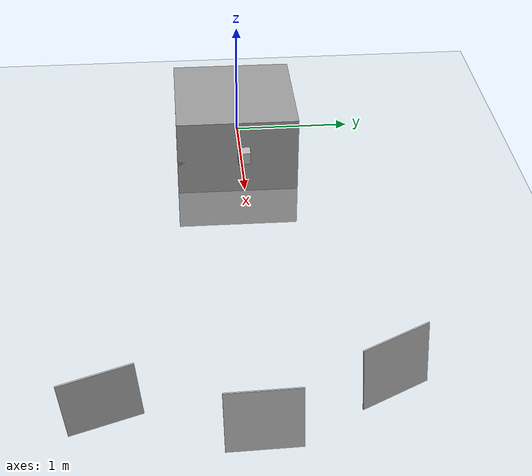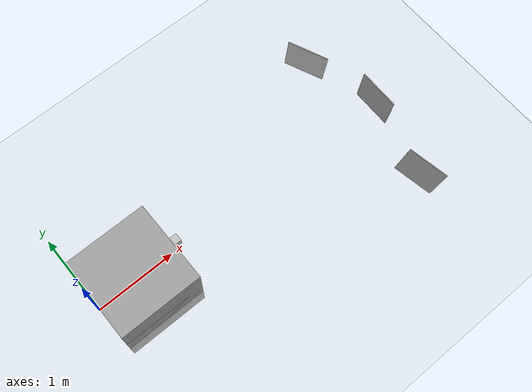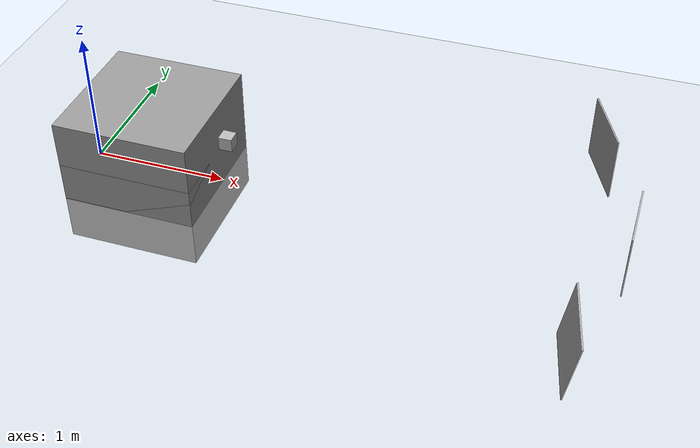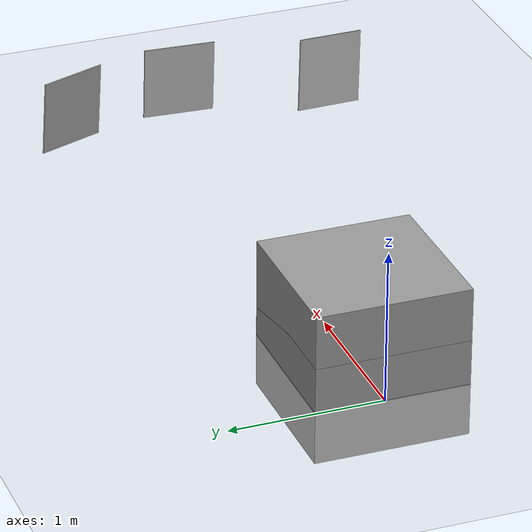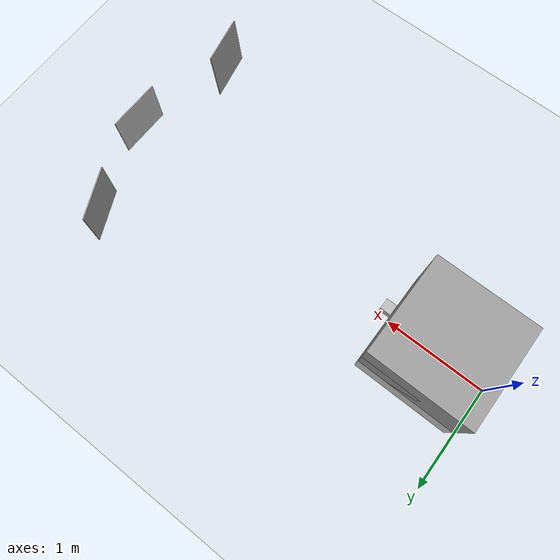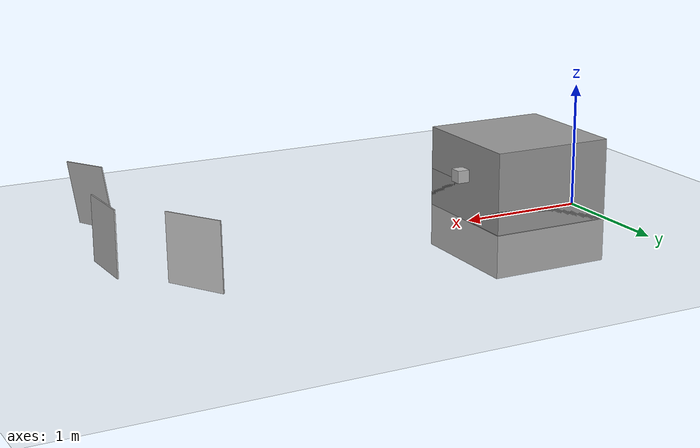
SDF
<sdf version="1.6">
 <world name="default">
  <model name="ground_plane">
   <static>1</static>
   <link name="link">
    <collision name="collision">
     <geometry><plane><normal>0 0 1</normal><size>100 100</size></plane></geometry>
     <surface><friction><ode><mu>100</mu><mu2>50</mu2></ode></friction></surface>
    </collision>
    <visual name="visual">
     <cast_shadows>0</cast_shadows>
     <geometry><plane><normal>0 0 1</normal><size>100 100</size></plane></geometry>
     <material>
      <script><uri>file://media/materials/scripts/gazebo.material</uri><name>Gazebo/Grey</name></script>
     </material>
    </visual>
   </link>
  </model>
  <light name="sun" type="directional">
   <pose>0 0 10 0 -0 0</pose>
   <diffuse>0.8 0.8 0.8 1</diffuse>
   <specular>0.1 0.1 0.1 1</specular>
   <attenuation>
    <range>1000</range>
    <constant>0.9</constant>
    <linear>0.01</linear>
    <quadratic>0.001</quadratic>
   </attenuation>
   <direction>-0.5 0.5 -1</direction>
  </light>
  <gravity>0 0 -9.8</gravity>
  <magnetic_field>6e-06 2.3e-05 -4.2e-05</magnetic_field>
  <atmosphere type="adiabatic"/>
  <physics name="default_physics" default="0" type="ode">
   <max_step_size>0.001</max_step_size>
   <real_time_factor>1</real_time_factor>
   <real_time_update_rate>1000</real_time_update_rate>
  </physics>
  <scene><ambient>0.4 0.4 0.4 1</ambient><background>0.7 0.7 0.7 1</background><shadows>1</shadows></scene>
  <spherical_coordinates>
   <surface_model>EARTH_WGS84</surface_model>
   <latitude_deg>0</latitude_deg>
   <longitude_deg>0</longitude_deg>
   <elevation>0</elevation>
   <heading_deg>0</heading_deg>
  </spherical_coordinates>
  <model name="Marker0">
   <static>1</static>
   <link name="link">
    <visual name="visual">
     <geometry><mesh><uri>model://mobil_4x4_26/meshes/Marker0.dae</uri><scale>1 1 1</scale></mesh></geometry>
    </visual>
   </link>
   <pose>3.96987 -0.103922 0.540055 -3.11415 0 0</pose>
  </model>
  <light name="user_point_light_0" type="point">
   <pose>2.76276 0.280844 1 0 -0 0</pose>
   <diffuse>0.5 0.5 0.5 1</diffuse>
   <specular>0.1 0.1 0.1 1</specular>
   <attenuation>
    <range>20</range>
    <constant>0.5</constant>
    <linear>0.01</linear>
    <quadratic>0.001</quadratic>
   </attenuation>
   <cast_shadows>0</cast_shadows>
   <direction>0 0 -1</direction>
  </light>
  <model name="camera_test">
   <link name="link_0">
    <pose>-0.258245 0.001652 -0.090441 0 -0 0</pose>
    <inertial>
     <mass>1</mass>
     <inertia>
      <ixx>0.166667</ixx>
      <ixy>0</ixy>
      <ixz>0</ixz>
      <iyy>0.166667</iyy>
      <iyz>0</iyz>
      <izz>0.166667</izz>
     </inertia>
    </inertial>
    <visual name="ModelPreview_0::link_0::visual_1">
     <geometry><box><size>1 1 1</size></box></geometry>
     <material>
      <lighting>1</lighting>
      <script><uri>file://media/materials/scripts/gazebo.material</uri><name>Gazebo/Grey</name></script>
      <ambient>0.3 0.3 0.3 1</ambient>
      <diffuse>0.7 0.7 0.7 1</diffuse>
      <specular>0.01 0.01 0.01 1</specular>
      <emissive>0 0 0 1</emissive>
      <shader type="vertex"><normal_map>__default__</normal_map></shader>
     </material>
    </visual>
    <visual name="visual">
     <geometry><box><size>1 1 0.3</size></box></geometry>
     <material>
      <lighting>1</lighting>
      <script><uri>file://media/materials/scripts/gazebo.material</uri><name>Gazebo/Grey</name></script>
      <ambient>0.3 0.3 0.3 1</ambient>
      <diffuse>0.7 0.7 0.7 1</diffuse>
      <specular>0.01 0.01 0.01 1</specular>
      <emissive>0 0 0 1</emissive>
      <shader type="vertex"><normal_map>__default__</normal_map></shader>
     </material>
    </visual>
    <collision name="collision">
     <geometry><box><size>1 1 0.3</size></box></geometry>
     <surface>
      <friction>
       <ode><mu>1</mu><mu2>1</mu2><fdir1>0 0 0</fdir1><slip1>0</slip1><slip2>0</slip2></ode>
       <torsional>
        <coefficient>1</coefficient>
        <patch_radius>0</patch_radius>
        <surface_radius>0</surface_radius>
        <use_patch_radius>1</use_patch_radius>
        <ode><slip>0</slip></ode>
       </torsional>
      </friction>
      <bounce><restitution_coefficient>0</restitution_coefficient><threshold>1e+06</threshold></bounce>
      <contact>
       <collide_without_contact>0</collide_without_contact>
       <collide_without_contact_bitmask>1</collide_without_contact_bitmask>
       <collide_bitmask>1</collide_bitmask>
       <ode>
        <soft_cfm>0</soft_cfm>
        <soft_erp>0.2</soft_erp>
        <kp>1e+13</kp>
        <kd>1</kd>
        <max_vel>0.01</max_vel>
        <min_depth>0</min_depth>
       </ode>
       <bullet>
        <split_impulse>1</split_impulse>
        <split_impulse_penetration_threshold>-0.01</split_impulse_penetration_threshold>
        <soft_cfm>0</soft_cfm>
        <soft_erp>0.2</soft_erp>
        <kp>1e+13</kp>
        <kd>1</kd>
       </bullet>
      </contact>
     </surface>
    </collision>
   </link>
   <model name="camera">
    <link name="link">
     <gravity>0</gravity>
     <pose>0.05 0.05 0.05 0 -0 0</pose>
     <inertial>
      <mass>0.1</mass>
      <inertia><ixx>1</ixx><ixy>0</ixy><ixz>0</ixz><iyy>1</iyy><iyz>0</iyz><izz>1</izz></inertia>
     </inertial>
     <visual name="visual"><geometry><box><size>0.1 0.1 0.1</size></box></geometry></visual>
     <sensor name="camera" type="camera">
      <camera name="__default__">
       <horizontal_fov>1.047</horizontal_fov>
       <image><width>752</width><height>480</height></image>
       <clip><near>0.1</near><far>100</far></clip>
      </camera>
      <plugin name="camera" filename="libgazebo_ros_camera.so">
       <alwaysOn>true</alwaysOn>
       <updateRate>0.0</updateRate>
       <cameraName>usb_cam</cameraName>
       <imageTopicName>image_raw</imageTopicName>
       <cameraInfoTopicName>camera_info</cameraInfoTopicName>
       <frameName>head_camera_right</frameName>
       <hackBaseline>0.07</hackBaseline>
       <distortionK1>0.0</distortionK1>
       <distortionK2>0.0</distortionK2>
       <distortionK3>0.0</distortionK3>
       <distortionT1>0.0</distortionT1>
       <distortionT2>0.0</distortionT2>
      </plugin>
      <always_on>1</always_on>
      <update_rate>30</update_rate>
      <visualize>0</visualize>
     </sensor>
    </link>
    <pose>0.258245 -0.001653 0.090441 0 -0 0</pose>
   </model>
   <joint name="link_0_JOINT_0" type="fixed">
    <parent>link_0</parent>
    <child>camera::link</child>
    <physics>
     <ode><limit><cfm>0</cfm><erp>0.2</erp></limit><suspension><cfm>0</cfm><erp>0.2</erp></suspension></ode>
    </physics>
   </joint>
   <static>0</static>
   <pose>0.767824 -0.057965 0.240441 0 0 -0.001974</pose>
  </model>
  <model name="Marker0_1">
   <static>1</static>
   <link name="link">
    <visual name="visual">
     <geometry><mesh><uri>model://mobil_4x4_73/meshes/Marker0.dae</uri><scale>1 1 1</scale></mesh></geometry>
    </visual>
   </link>
   <pose>3.76616 -1.12242 0.54781 -3.0329 0.116661 0.248897</pose>
  </model>
  <model name="Marker0_2">
   <static>1</static>
   <link name="link">
    <visual name="visual">
     <geometry><mesh><uri>model://mobil_4x4_3/meshes/Marker0.dae</uri><scale>1 1 1</scale></mesh></geometry>
    </visual>
   </link>
   <pose>3.639 0.75971 0.622104 -3.0937 -0.022452 0.438033</pose>
  </model>
 </world>
</sdf>
